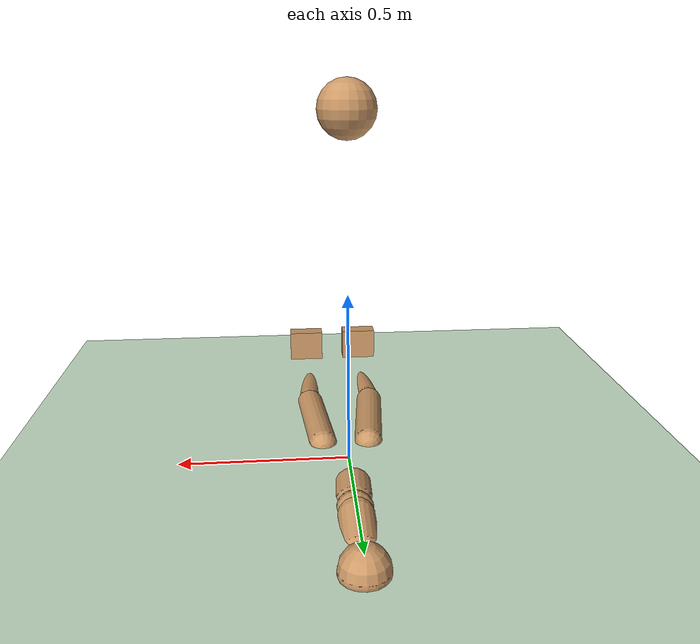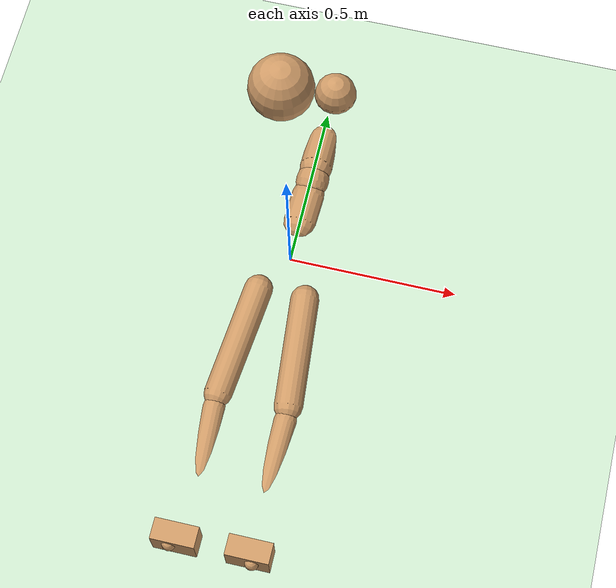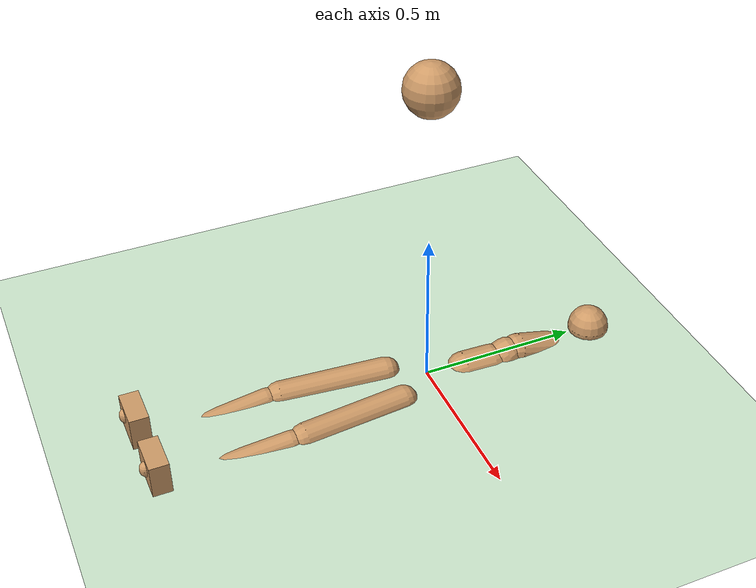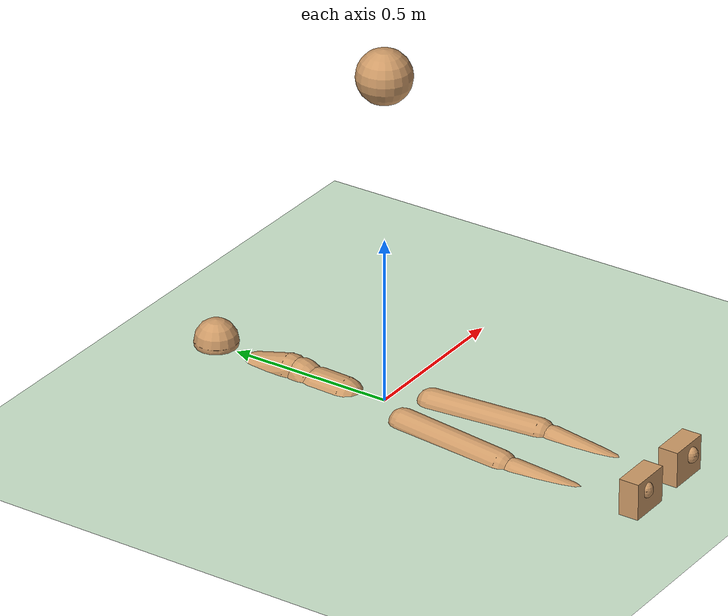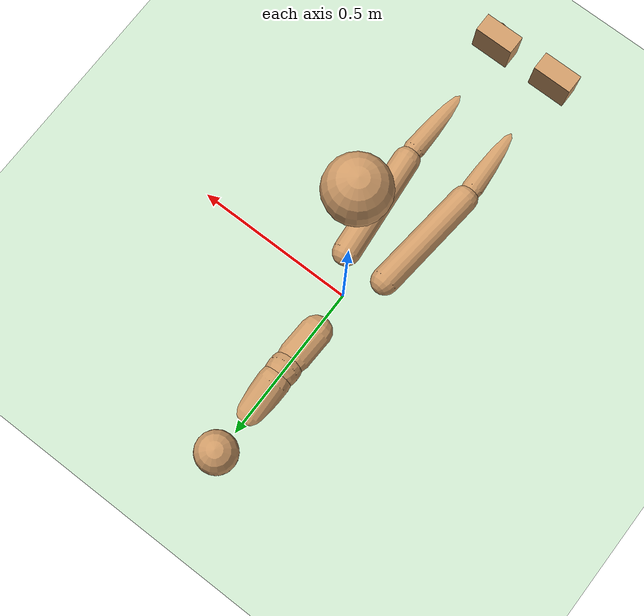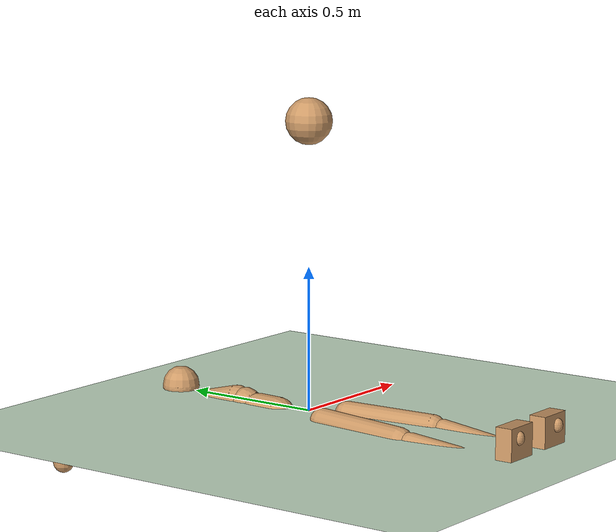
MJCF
<mujoco model="humanoid">
  <compiler angle="degree" inertiafromgeom="true" coordinate="global"/>
  <include file="./common/materials.xml"/>
  <visual>
    <headlight ambient=".4 .4 .4" diffuse=".8 .8 .8" specular="0.1 0.1 0.1"/>
    <map znear=".01"/>
    <quality shadowsize="2048"/>
  </visual>
  <default>
    <joint damping="0.0" armature="0.01" stiffness="0.0" limited="true"/>
    <geom conaffinity="7" condim="1" contype="7" margin="0.001" material="self" rgba="0.8 0.6 .4 1"/>
  </default>
  <statistic extent="3" center="0 0 1"/>
  <option timestep="0.00222222222"/>
  <asset>
    <texture type="skybox" builtin="gradient" rgb1=".4 .5 .6" rgb2="0 0 0" width="100" height="100"/>
    <texture builtin="flat" height="1278" mark="cross" markrgb="1 1 1" name="texgeom" random="0.01" rgb1="0.8 0.6 0.4" rgb2="0.8 0.6 0.4" type="cube" width="127"/>
    <material name="geom" texture="texgeom" texuniform="true"/>
  </asset>
  <worldbody>
    <light cutoff="100" diffuse="1 1 1" dir="-0 0 -1.3" directional="true" exponent="1" pos="0 0 1.3" specular=".1 .1 .1"/>
    <geom conaffinity="1" condim="3" name="floor" pos="0 0 0" rgba="0.8 0.9 0.8 1" size="100 100 .2" type="plane" material="MatPlane"/>
    <body name="Pelvis" pos="0 0 0" user="-0.0002 -0.0243 -0.0126">
      <joint name="Pelvis" pos="0 0 0" limited="false" type="free" armature="0" damping="0" stiffness="0"/>
      <geom type="sphere" contype="0" conaffinity="1" size="0.0800" pos="0.0000 0.0000 1.0000"/>
      <body name="L_Hip" pos="0.0695 -0.0914 -0.0068" user="0.1038 -0.4666 -0.0113">
        <joint name="L_Hip_z" type="hinge" pos="0.0695 -0.0914 -0.0068" axis="0 0 1" range="-180.0000 180.0000" damping="0" stiffness="0" armature="0.01"/>
        <joint name="L_Hip_y" type="hinge" pos="0.0695 -0.0914 -0.0068" axis="0 1 0" range="-180.0000 180.0000" damping="0" stiffness="0" armature="0.01"/>
        <joint name="L_Hip_x" type="hinge" pos="0.0695 -0.0914 -0.0068" axis="1 0 0" range="-180.0000 180.0000" damping="0" stiffness="0" armature="0.01"/>
        <geom type="capsule" contype="0" conaffinity="1" fromto="0.0713 -0.1113 -0.0071 0.102 -0.4467 -0.0111" size="0.043"/>
        <body name="L_Knee" pos="0.1038 -0.4666 -0.0113" user="0.0902 -0.8646 -0.0550">
          <joint name="L_Knee_z" type="hinge" pos="0.1038 -0.4666 -0.0113" axis="0 0 1" range="-180.0000 180.0000" damping="0" stiffness="0" armature="0.01"/>
          <joint name="L_Knee_y" type="hinge" pos="0.1038 -0.4666 -0.0113" axis="0 1 0" range="-180.0000 180.0000" damping="0" stiffness="0" armature="0.01"/>
          <joint name="L_Knee_x" type="hinge" pos="0.1038 -0.4666 -0.0113" axis="1 0 0" range="-180.0000 180.0000" damping="0" stiffness="0" armature="0.01"/>
          <geom type="capsule" contype="0" conaffinity="1" fromto="0.1031 -0.4865 -0.0135 0.0909 -0.8447 -0.0528" size="0.035"/>
          <body name="L_Ankle" pos="0.0902 -0.8646 -0.055" user="0.1166 -0.9204 0.0643">
            <joint name="L_Ankle_z" type="hinge" pos="0.0902 -0.8646 -0.055" axis="0 0 1" range="-180.0000 180.0000" damping="0" stiffness="0" armature="0.01"/>
            <joint name="L_Ankle_y" type="hinge" pos="0.0902 -0.8646 -0.055" axis="0 1 0" range="-180.0000 180.0000" damping="0" stiffness="0" armature="0.01"/>
            <joint name="L_Ankle_x" type="hinge" pos="0.0902 -0.8646 -0.055" axis="1 0 0" range="-180.0000 180.0000" damping="0" stiffness="0" armature="0.01"/>
            <geom type="box" contype="0" conaffinity="1" pos="0.1034 -0.8925 0.0046" size="0.0619 0.0998 0.0299" quat="0.7071 -0.7071 -0.0000 -0.0000"/>
            <body name="L_Toe" pos="0.1166 -0.9204 0.0643" user="0.1166 -0.9204 0.0643">
              <joint name="L_Toe_z" type="hinge" pos="0.1166 -0.9204 0.0643" axis="0 0 1" range="-180.0000 180.0000" damping="0" stiffness="0" armature="0.01"/>
              <joint name="L_Toe_y" type="hinge" pos="0.1166 -0.9204 0.0643" axis="0 1 0" range="-180.0000 180.0000" damping="0" stiffness="0" armature="0.01"/>
              <joint name="L_Toe_x" type="hinge" pos="0.1166 -0.9204 0.0643" axis="1 0 0" range="-180.0000 180.0000" damping="0" stiffness="0" armature="0.01"/>
              <geom type="capsule" contype="0" conaffinity="1" fromto="0.1166 -0.9204 0.0683 0.1166 -0.9204 0.0603" size="0.02"/>
            </body>
          </body>
        </body>
      </body>
      <body name="R_Hip" pos="-0.0677 -0.0905 -0.0043" user="-0.1060 -0.4731 -0.0132">
        <joint name="R_Hip_z" type="hinge" pos="-0.0677 -0.0905 -0.0043" axis="0 0 1" range="-180.0000 180.0000" damping="0" stiffness="0" armature="0.01"/>
        <joint name="R_Hip_y" type="hinge" pos="-0.0677 -0.0905 -0.0043" axis="0 1 0" range="-180.0000 180.0000" damping="0" stiffness="0" armature="0.01"/>
        <joint name="R_Hip_x" type="hinge" pos="-0.0677 -0.0905 -0.0043" axis="1 0 0" range="-180.0000 180.0000" damping="0" stiffness="0" armature="0.01"/>
        <geom type="capsule" contype="0" conaffinity="1" fromto="-0.0697 -0.1104 -0.0048 -0.104 -0.4532 -0.0127" size="0.043"/>
        <body name="R_Knee" pos="-0.106 -0.4731 -0.0132" user="-0.0902 -0.8715 -0.0555">
          <joint name="R_Knee_z" type="hinge" pos="-0.106 -0.4731 -0.0132" axis="0 0 1" range="-180.0000 180.0000" damping="0" stiffness="0" armature="0.01"/>
          <joint name="R_Knee_y" type="hinge" pos="-0.106 -0.4731 -0.0132" axis="0 1 0" range="-180.0000 180.0000" damping="0" stiffness="0" armature="0.01"/>
          <joint name="R_Knee_x" type="hinge" pos="-0.106 -0.4731 -0.0132" axis="1 0 0" range="-180.0000 180.0000" damping="0" stiffness="0" armature="0.01"/>
          <geom type="capsule" contype="0" conaffinity="1" fromto="-0.1052 -0.493 -0.0153 -0.091 -0.8516 -0.0534" size="0.035"/>
          <body name="R_Ankle" pos="-0.0902 -0.8715 -0.0555" user="-0.1156 -0.9196 0.0679">
            <joint name="R_Ankle_z" type="hinge" pos="-0.0902 -0.8715 -0.0555" axis="0 0 1" range="-180.0000 180.0000" damping="0" stiffness="0" armature="0.01"/>
            <joint name="R_Ankle_y" type="hinge" pos="-0.0902 -0.8715 -0.0555" axis="0 1 0" range="-180.0000 180.0000" damping="0" stiffness="0" armature="0.01"/>
            <joint name="R_Ankle_x" type="hinge" pos="-0.0902 -0.8715 -0.0555" axis="1 0 0" range="-180.0000 180.0000" damping="0" stiffness="0" armature="0.01"/>
            <geom type="box" contype="0" conaffinity="1" pos="-0.1029 -0.8956 0.0062" size="0.0622 0.1003 0.0301" quat="0.7071 -0.7071 0.0000 0.0000"/>
            <body name="R_Toe" pos="-0.1156 -0.9196 0.0679" user="-0.1156 -0.9196 0.0679">
              <joint name="R_Toe_z" type="hinge" pos="-0.1156 -0.9196 0.0679" axis="0 0 1" range="-180.0000 180.0000" damping="0" stiffness="0" armature="0.01"/>
              <joint name="R_Toe_y" type="hinge" pos="-0.1156 -0.9196 0.0679" axis="0 1 0" range="-180.0000 180.0000" damping="0" stiffness="0" armature="0.01"/>
              <joint name="R_Toe_x" type="hinge" pos="-0.1156 -0.9196 0.0679" axis="1 0 0" range="-180.0000 180.0000" damping="0" stiffness="0" armature="0.01"/>
              <geom type="capsule" contype="0" conaffinity="1" fromto="-0.1156 -0.9196 0.0719 -0.1156 -0.9196 0.0639" size="0.02"/>
            </body>
          </body>
        </body>
      </body>
      <body name="Torso" pos="-0.0025 0.109 -0.0267" user="0.0030 0.2441 -0.0256">
        <joint name="Torso_z" type="hinge" pos="-0.0025 0.109 -0.0267" axis="0 0 1" range="-180.0000 180.0000" damping="0" stiffness="0" armature="0.01"/>
        <joint name="Torso_y" type="hinge" pos="-0.0025 0.109 -0.0267" axis="0 1 0" range="-180.0000 180.0000" damping="0" stiffness="0" armature="0.01"/>
        <joint name="Torso_x" type="hinge" pos="-0.0025 0.109 -0.0267" axis="1 0 0" range="-180.0000 180.0000" damping="0" stiffness="0" armature="0.01"/>
        <geom type="capsule" contype="0" conaffinity="1" fromto="-0.0017 0.1289 -0.0265 0.0021 0.2242 -0.0258" size="0.055"/>
        <body name="Spine" pos="0.003 0.2441 -0.0256" user="0.0044 0.2971 -0.0002">
          <joint name="Spine_z" type="hinge" pos="0.003 0.2441 -0.0256" axis="0 0 1" range="-180.0000 180.0000" damping="0" stiffness="0" armature="0.01"/>
          <joint name="Spine_y" type="hinge" pos="0.003 0.2441 -0.0256" axis="0 1 0" range="-180.0000 180.0000" damping="0" stiffness="0" armature="0.01"/>
          <joint name="Spine_x" type="hinge" pos="0.003 0.2441 -0.0256" axis="1 0 0" range="-180.0000 180.0000" damping="0" stiffness="0" armature="0.01"/>
          <geom type="capsule" contype="0" conaffinity="1" fromto="0.0035 0.2622 -0.0169 0.0039 0.279 -0.0088" size="0.051"/>
          <body name="Chest" pos="0.0044 0.2971 -0.0002" user="0.0025 0.4486 -0.0387">
            <joint name="Chest_z" type="hinge" pos="0.0044 0.2971 -0.0002" axis="0 0 1" range="-180.0000 180.0000" damping="0" stiffness="0" armature="0.01"/>
            <joint name="Chest_y" type="hinge" pos="0.0044 0.2971 -0.0002" axis="0 1 0" range="-180.0000 180.0000" damping="0" stiffness="0" armature="0.01"/>
            <joint name="Chest_x" type="hinge" pos="0.0044 0.2971 -0.0002" axis="1 0 0" range="-180.0000 180.0000" damping="0" stiffness="0" armature="0.01"/>
            <geom type="capsule" contype="0" conaffinity="1" fromto="0.0042 0.3164 -0.0051 0.0028 0.4292 -0.0338" size="0.05"/>
            <body name="Neck" pos="0.0016 0.5109 -0.043" user="0.0068 0.5759 0.0083">
              <joint name="Neck_z" type="hinge" pos="0.0016 0.5109 -0.043" axis="0 0 1" range="-180.0000 180.0000" damping="0" stiffness="0" armature="0.01"/>
              <joint name="Neck_y" type="hinge" pos="0.0016 0.5109 -0.043" axis="0 1 0" range="-180.0000 180.0000" damping="0" stiffness="0" armature="0.01"/>
              <joint name="Neck_x" type="hinge" pos="0.0016 0.5109 -0.043" axis="1 0 0" range="-180.0000 180.0000" damping="0" stiffness="0" armature="0.01"/>
              <geom type="capsule" contype="0" conaffinity="1" fromto="0.0029 0.5266 -0.0307 0.0055 0.5602 -0.0041" size="0.03"/>
              <body name="Head" pos="0.0068 0.5759 0.0083" user="0.0068 0.5759 0.0083">
                <joint name="Head_z" type="hinge" pos="0.0068 0.5759 0.0083" axis="0 0 1" range="-180.0000 180.0000" damping="0" stiffness="0" armature="0.01"/>
                <joint name="Head_y" type="hinge" pos="0.0068 0.5759 0.0083" axis="0 1 0" range="-180.0000 180.0000" damping="0" stiffness="0" armature="0.01"/>
                <joint name="Head_x" type="hinge" pos="0.0068 0.5759 0.0083" axis="1 0 0" range="-180.0000 180.0000" damping="0" stiffness="0" armature="0.01"/>
                <geom type="capsule" contype="0" conaffinity="1" fromto="0.0068 0.5759 0.0123 0.0068 0.5759 0.0043" size="0.065"/>
              </body>
            </body>
            <body name="L_Thorax" pos="0.0833 0.4188 -0.0343" user="0.1742 0.4493 -0.0431">
              <joint name="L_Thorax_z" type="hinge" pos="0.0833 0.4188 -0.0343" axis="0 0 1" range="-180.0000 180.0000" damping="0" stiffness="0" armature="0.01"/>
              <joint name="L_Thorax_y" type="hinge" pos="0.0833 0.4188 -0.0343" axis="0 1 0" range="-180.0000 180.0000" damping="0" stiffness="0" armature="0.01"/>
              <joint name="L_Thorax_x" type="hinge" pos="0.0833 0.4188 -0.0343" axis="1 0 0" range="-180.0000 180.0000" damping="0" stiffness="0" armature="0.01"/>
              <geom type="capsule" contype="0" conaffinity="1" fromto="0.1021 0.4251 -0.0361 0.1553 0.443 -0.0413" size="0.03"/>
              <body name="L_Shoulder" pos="0.1742 0.4493 -0.0431" user="0.4338 0.4365 -0.0706">
                <joint name="L_Shoulder_z" type="hinge" pos="0.1742 0.4493 -0.0431" axis="0 0 1" range="-180.0000 180.0000" damping="0" stiffness="0" armature="0.01"/>
                <joint name="L_Shoulder_y" type="hinge" pos="0.1742 0.4493 -0.0431" axis="0 1 0" range="-180.0000 180.0000" damping="0" stiffness="0" armature="0.01"/>
                <joint name="L_Shoulder_x" type="hinge" pos="0.1742 0.4493 -0.0431" axis="1 0 0" range="-180.0000 180.0000" damping="0" stiffness="0" armature="0.01"/>
                <geom type="capsule" contype="0" conaffinity="1" fromto="0.1941 0.4483 -0.0452 0.414 0.4375 -0.0685" size="0.03"/>
                <body name="L_Elbow" pos="0.4338 0.4365 -0.0706" user="0.6831 0.4455 -0.0718">
                  <joint name="L_Elbow_z" type="hinge" pos="0.4338 0.4365 -0.0706" axis="0 0 1" range="-720.0000 720.0000" damping="0" stiffness="0" armature="0.01"/>
                  <joint name="L_Elbow_y" type="hinge" pos="0.4338 0.4365 -0.0706" axis="0 1 0" range="-720.0000 720.0000" damping="0" stiffness="0" armature="0.01"/>
                  <joint name="L_Elbow_x" type="hinge" pos="0.4338 0.4365 -0.0706" axis="1 0 0" range="-720.0000 720.0000" damping="0" stiffness="0" armature="0.01"/>
                  <geom type="capsule" contype="0" conaffinity="1" fromto="0.4538 0.4372 -0.0707 0.6631 0.4448 -0.0717" size="0.03"/>
                  <body name="L_Wrist" pos="0.6831 0.4455 -0.0718" user="0.7671 0.4373 -0.0867">
                    <joint name="L_Wrist_z" type="hinge" pos="0.6831 0.4455 -0.0718" axis="0 0 1" range="-180.0000 180.0000" damping="0" stiffness="0" armature="0.01"/>
                    <joint name="L_Wrist_y" type="hinge" pos="0.6831 0.4455 -0.0718" axis="0 1 0" range="-180.0000 180.0000" damping="0" stiffness="0" armature="0.01"/>
                    <joint name="L_Wrist_x" type="hinge" pos="0.6831 0.4455 -0.0718" axis="1 0 0" range="-180.0000 180.0000" damping="0" stiffness="0" armature="0.01"/>
                    <geom type="capsule" contype="0" conaffinity="1" fromto="0.7027 0.4436 -0.0753 0.7475 0.4392 -0.0832" size="0.03"/>
                    <body name="L_Hand" pos="0.7671 0.4373 -0.0867" user="0.7671 0.4373 -0.0867">
                      <joint name="L_Hand_z" type="hinge" pos="0.7671 0.4373 -0.0867" axis="0 0 1" range="-180.0000 180.0000" damping="0" stiffness="0" armature="0.01"/>
                      <joint name="L_Hand_y" type="hinge" pos="0.7671 0.4373 -0.0867" axis="0 1 0" range="-180.0000 180.0000" damping="0" stiffness="0" armature="0.01"/>
                      <joint name="L_Hand_x" type="hinge" pos="0.7671 0.4373 -0.0867" axis="1 0 0" range="-180.0000 180.0000" damping="0" stiffness="0" armature="0.01"/>
                      <geom type="capsule" contype="0" conaffinity="1" fromto="0.7671 0.4373 -0.0827 0.7671 0.4373 -0.0907" size="0.035"/>
                    </body>
                  </body>
                </body>
              </body>
            </body>
            <body name="R_Thorax" pos="-0.0773 0.4159 -0.0388" user="-0.1734 0.4484 -0.0479">
              <joint name="R_Thorax_z" type="hinge" pos="-0.0773 0.4159 -0.0388" axis="0 0 1" range="-180.0000 180.0000" damping="0" stiffness="0" armature="0.01"/>
              <joint name="R_Thorax_y" type="hinge" pos="-0.0773 0.4159 -0.0388" axis="0 1 0" range="-180.0000 180.0000" damping="0" stiffness="0" armature="0.01"/>
              <joint name="R_Thorax_x" type="hinge" pos="-0.0773 0.4159 -0.0388" axis="1 0 0" range="-180.0000 180.0000" damping="0" stiffness="0" armature="0.01"/>
              <geom type="capsule" contype="0" conaffinity="1" fromto="-0.0962 0.4223 -0.0406 -0.1545 0.4421 -0.0461" size="0.03"/>
              <body name="R_Shoulder" pos="-0.1734 0.4484 -0.0479" user="-0.4271 0.4351 -0.0693">
                <joint name="R_Shoulder_z" type="hinge" pos="-0.1734 0.4484 -0.0479" axis="0 0 1" range="-180.0000 180.0000" damping="0" stiffness="0" armature="0.01"/>
                <joint name="R_Shoulder_y" type="hinge" pos="-0.1734 0.4484 -0.0479" axis="0 1 0" range="-180.0000 180.0000" damping="0" stiffness="0" armature="0.01"/>
                <joint name="R_Shoulder_x" type="hinge" pos="-0.1734 0.4484 -0.0479" axis="1 0 0" range="-180.0000 180.0000" damping="0" stiffness="0" armature="0.01"/>
                <geom type="capsule" contype="0" conaffinity="1" fromto="-0.1933 0.4474 -0.0496 -0.4072 0.4362 -0.0677" size="0.03"/>
                <body name="R_Elbow" pos="-0.4271 0.4351 -0.0693" user="-0.6824 0.4429 -0.0749">
                  <joint name="R_Elbow_z" type="hinge" pos="-0.4271 0.4351 -0.0693" axis="0 0 1" range="-720.0000 720.0000" damping="0" stiffness="0" armature="0.01"/>
                  <joint name="R_Elbow_y" type="hinge" pos="-0.4271 0.4351 -0.0693" axis="0 1 0" range="-720.0000 720.0000" damping="0" stiffness="0" armature="0.01"/>
                  <joint name="R_Elbow_x" type="hinge" pos="-0.4271 0.4351 -0.0693" axis="1 0 0" range="-720.0000 720.0000" damping="0" stiffness="0" armature="0.01"/>
                  <geom type="capsule" contype="0" conaffinity="1" fromto="-0.4471 0.4357 -0.0698 -0.6624 0.4423 -0.0745" size="0.03"/>
                  <body name="R_Wrist" pos="-0.6824 0.4429 -0.0749" user="-0.7670 0.4368 -0.0852">
                    <joint name="R_Wrist_z" type="hinge" pos="-0.6824 0.4429 -0.0749" axis="0 0 1" range="-180.0000 180.0000" damping="0" stiffness="0" armature="0.01"/>
                    <joint name="R_Wrist_y" type="hinge" pos="-0.6824 0.4429 -0.0749" axis="0 1 0" range="-180.0000 180.0000" damping="0" stiffness="0" armature="0.01"/>
                    <joint name="R_Wrist_x" type="hinge" pos="-0.6824 0.4429 -0.0749" axis="1 0 0" range="-180.0000 180.0000" damping="0" stiffness="0" armature="0.01"/>
                    <geom type="capsule" contype="0" conaffinity="1" fromto="-0.7022 0.4415 -0.0773 -0.7472 0.4382 -0.0828" size="0.03"/>
                    <body name="R_Hand" pos="-0.767 0.4368 -0.0852" user="-0.7670 0.4368 -0.0852">
                      <joint name="R_Hand_z" type="hinge" pos="-0.767 0.4368 -0.0852" axis="0 0 1" range="-180.0000 180.0000" damping="0" stiffness="0" armature="0.01"/>
                      <joint name="R_Hand_y" type="hinge" pos="-0.767 0.4368 -0.0852" axis="0 1 0" range="-180.0000 180.0000" damping="0" stiffness="0" armature="0.01"/>
                      <joint name="R_Hand_x" type="hinge" pos="-0.767 0.4368 -0.0852" axis="1 0 0" range="-180.0000 180.0000" damping="0" stiffness="0" armature="0.01"/>
                      <geom type="capsule" contype="0" conaffinity="1" fromto="-0.767 0.4368 -0.0812 -0.767 0.4368 -0.0892" size="0.035"/>
                    </body>
                  </body>
                </body>
              </body>
            </body>
          </body>
        </body>
      </body>
    </body>
  </worldbody>
  <actuator>
    <motor name="L_Hip_z" joint="L_Hip_z" gear="1"/>
    <motor name="L_Hip_y" joint="L_Hip_y" gear="1"/>
    <motor name="L_Hip_x" joint="L_Hip_x" gear="1"/>
    <motor name="L_Knee_z" joint="L_Knee_z" gear="1"/>
    <motor name="L_Knee_y" joint="L_Knee_y" gear="1"/>
    <motor name="L_Knee_x" joint="L_Knee_x" gear="1"/>
    <motor name="L_Ankle_z" joint="L_Ankle_z" gear="1"/>
    <motor name="L_Ankle_y" joint="L_Ankle_y" gear="1"/>
    <motor name="L_Ankle_x" joint="L_Ankle_x" gear="1"/>
    <motor name="L_Toe_z" joint="L_Toe_z" gear="1"/>
    <motor name="L_Toe_y" joint="L_Toe_y" gear="1"/>
    <motor name="L_Toe_x" joint="L_Toe_x" gear="1"/>
    <motor name="R_Hip_z" joint="R_Hip_z" gear="1"/>
    <motor name="R_Hip_y" joint="R_Hip_y" gear="1"/>
    <motor name="R_Hip_x" joint="R_Hip_x" gear="1"/>
    <motor name="R_Knee_z" joint="R_Knee_z" gear="1"/>
    <motor name="R_Knee_y" joint="R_Knee_y" gear="1"/>
    <motor name="R_Knee_x" joint="R_Knee_x" gear="1"/>
    <motor name="R_Ankle_z" joint="R_Ankle_z" gear="1"/>
    <motor name="R_Ankle_y" joint="R_Ankle_y" gear="1"/>
    <motor name="R_Ankle_x" joint="R_Ankle_x" gear="1"/>
    <motor name="R_Toe_z" joint="R_Toe_z" gear="1"/>
    <motor name="R_Toe_y" joint="R_Toe_y" gear="1"/>
    <motor name="R_Toe_x" joint="R_Toe_x" gear="1"/>
    <motor name="Torso_z" joint="Torso_z" gear="1"/>
    <motor name="Torso_y" joint="Torso_y" gear="1"/>
    <motor name="Torso_x" joint="Torso_x" gear="1"/>
    <motor name="Spine_z" joint="Spine_z" gear="1"/>
    <motor name="Spine_y" joint="Spine_y" gear="1"/>
    <motor name="Spine_x" joint="Spine_x" gear="1"/>
    <motor name="Chest_z" joint="Chest_z" gear="1"/>
    <motor name="Chest_y" joint="Chest_y" gear="1"/>
    <motor name="Chest_x" joint="Chest_x" gear="1"/>
    <motor name="Neck_z" joint="Neck_z" gear="1"/>
    <motor name="Neck_y" joint="Neck_y" gear="1"/>
    <motor name="Neck_x" joint="Neck_x" gear="1"/>
    <motor name="Head_z" joint="Head_z" gear="1"/>
    <motor name="Head_y" joint="Head_y" gear="1"/>
    <motor name="Head_x" joint="Head_x" gear="1"/>
    <motor name="L_Thorax_z" joint="L_Thorax_z" gear="1"/>
    <motor name="L_Thorax_y" joint="L_Thorax_y" gear="1"/>
    <motor name="L_Thorax_x" joint="L_Thorax_x" gear="1"/>
    <motor name="L_Shoulder_z" joint="L_Shoulder_z" gear="1"/>
    <motor name="L_Shoulder_y" joint="L_Shoulder_y" gear="1"/>
    <motor name="L_Shoulder_x" joint="L_Shoulder_x" gear="1"/>
    <motor name="L_Elbow_z" joint="L_Elbow_z" gear="1"/>
    <motor name="L_Elbow_y" joint="L_Elbow_y" gear="1"/>
    <motor name="L_Elbow_x" joint="L_Elbow_x" gear="1"/>
    <motor name="L_Wrist_z" joint="L_Wrist_z" gear="1"/>
    <motor name="L_Wrist_y" joint="L_Wrist_y" gear="1"/>
    <motor name="L_Wrist_x" joint="L_Wrist_x" gear="1"/>
    <motor name="L_Hand_z" joint="L_Hand_z" gear="1"/>
    <motor name="L_Hand_y" joint="L_Hand_y" gear="1"/>
    <motor name="L_Hand_x" joint="L_Hand_x" gear="1"/>
    <motor name="R_Thorax_z" joint="R_Thorax_z" gear="1"/>
    <motor name="R_Thorax_y" joint="R_Thorax_y" gear="1"/>
    <motor name="R_Thorax_x" joint="R_Thorax_x" gear="1"/>
    <motor name="R_Shoulder_z" joint="R_Shoulder_z" gear="1"/>
    <motor name="R_Shoulder_y" joint="R_Shoulder_y" gear="1"/>
    <motor name="R_Shoulder_x" joint="R_Shoulder_x" gear="1"/>
    <motor name="R_Elbow_z" joint="R_Elbow_z" gear="1"/>
    <motor name="R_Elbow_y" joint="R_Elbow_y" gear="1"/>
    <motor name="R_Elbow_x" joint="R_Elbow_x" gear="1"/>
    <motor name="R_Wrist_z" joint="R_Wrist_z" gear="1"/>
    <motor name="R_Wrist_y" joint="R_Wrist_y" gear="1"/>
    <motor name="R_Wrist_x" joint="R_Wrist_x" gear="1"/>
    <motor name="R_Hand_z" joint="R_Hand_z" gear="1"/>
    <motor name="R_Hand_y" joint="R_Hand_y" gear="1"/>
    <motor name="R_Hand_x" joint="R_Hand_x" gear="1"/>
  </actuator>
</mujoco>

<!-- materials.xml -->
<!--
Common textures, colors and materials to be used throughout this suite. Some
materials such as xxx_highlight are activated on occurence of certain events,
for example receiving a positive reward.
-->
<mujoco>
  <asset>
    <texture name="grid" type="2d" builtin="checker" rgb1=".1 .2 .3" rgb2=".2 .3 .4" width="300" height="300" mark="edge" markrgb=".2 .3 .4"/>
    <material name="grid" texture="grid" texrepeat="1 1" texuniform="true" reflectance=".2"/>
    <texture builtin="checker" height="100" name="texplane" rgb1="0 0 0" rgb2=".8 .8 .8" type="2d" width="100"/>
    <texture name="grass" file="./common/grass.png" type="2d"/>

    <texture name="grid_new" type="2d" builtin="checker" rgb1=".1 .3 .2" rgb2=".2 .4 .3" width="1000" height="1000" mark="none" markrgb=".8 .6 .4"/>
    <material name="grid_new" texture="grid_new" texrepeat="0.2 0.2" texuniform="true" reflectance=".2"/>
    <material name="MatPlane" reflectance="0.5" shininess="1" specular="1" texrepeat="60 60" texture="texplane"/>
    <material name="GrassPlane" reflectance="0.0" shininess="1" specular="1" texrepeat="400 400" texture="grass"/>
    <material name="self" rgba=".7 .5 .3 1"/>
    <material name="self_default" rgba=".7 .5 .3 1"/>
    <material name="self_highlight" rgba="0 .5 .3 1"/>
    <material name="effector" rgba=".7 .4 .2 1"/>
    <material name="effector_default" rgba=".7 .4 .2 1"/>
    <material name="effector_highlight" rgba="0 .5 .3 1"/>
    <material name="decoration" rgba=".3 .5 .7 1"/>
    <material name="eye" rgba="0 .2 1 1"/>
    <material name="target" rgba=".6 .3 .3 1"/>
    <material name="target_default" rgba=".6 .3 .3 1"/>
    <material name="target_highlight" rgba=".6 .3 .3 .4"/>
    <material name="expert" rgba=".6 .3 .3 .4"/>
  </asset>
</mujoco>
